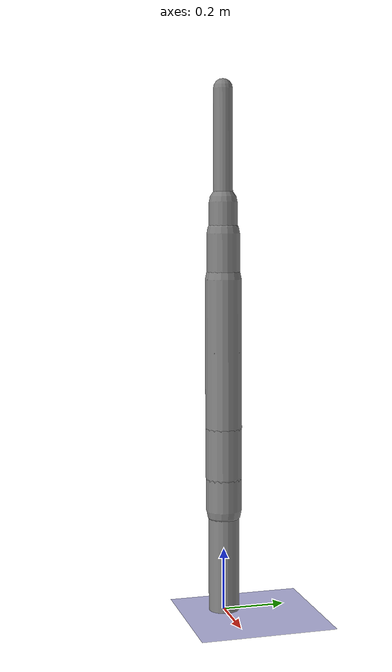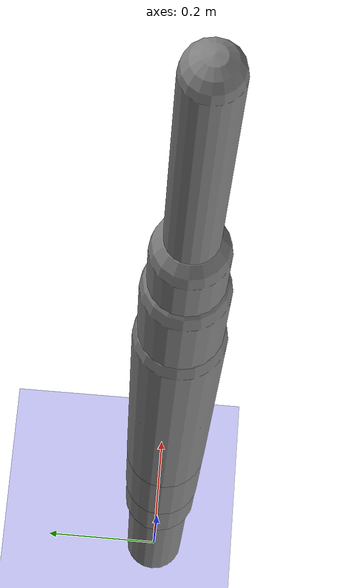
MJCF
<?xml version='1.0' encoding='UTF-8'?>
<mujoco model="robot_model">
  <worldbody>
    <light name="light" pos="0 -3 10" dir="0 0.5 -1" diffuse=".8 .8 .8" specular="0.1 0.1 0.1"/>
    <geom name="floor" type="plane" size="10.0 10.0 0.1" pos="0 0 0" rgba="0.8 0.8 1 1" contype="2" conaffinity="1"/>
    <body name="limb0" pos="0 0 0">
      <geom type="capsule" fromto="0 0 0 0 0 0.45661623856302164" size="0.049801474954876836" density="698.4850526219719" contype="1" conaffinity="2"/>
      <site type="sphere" size="0.01" name="limb0_site0" pos="0 0 0.4362571260375736"/>
      <site type="sphere" size="0.01" name="limb0_site1" pos="0 0 0.328490241625548"/>
      <freejoint name="limb0_root"/>
      <body name="limb1" pos="0 0 0.4362571260375736">
        <geom type="capsule" fromto="0 0 0 0 0 0.40845966504384795" size="0.058092403829812705" density="1189.9842333916856" contype="1" conaffinity="2"/>
        <site type="sphere" size="0.01" name="limb1_site0" pos="0 0 0.3831327430558419"/>
        <site type="sphere" size="0.01" name="limb1_site1" pos="0 0 0.16283997418838086"/>
        <body name="limb2" pos="0 0 0.3831327430558419">
          <geom type="capsule" fromto="0 0 0 0 0 0.5" size="0.045329815490319995" density="1017.2531489540214" contype="1" conaffinity="2"/>
          <site type="sphere" size="0.01" name="limb2_site0" pos="0 0 0.4086911084967624"/>
          <site type="sphere" size="0.01" name="limb2_site1" pos="0 0 0.07813025057707049"/>
          <site type="sphere" size="0.01" name="limb2_site2" pos="0 0 0.12986835276111092"/>
          <body name="limb3" pos="0 0 0.4086911084967624">
            <geom type="capsule" fromto="0 0 0 0 0 0.4421996038731557" size="0.0306984811473651" density="786.5427317260016" contype="1" conaffinity="2"/>
            <joint name="joint_limb2_limb3_0" type="hinge" axis="1 0 0" range="-39.49060384065946 39.49060384065946" damping="5.0"/>
          </body>
          <body name="limb4" pos="0 0 0.07813025057707049">
            <geom type="capsule" fromto="0 0 0 0 0 0.3022856622679478" size="0.048175815576506256" density="901.0737310055127" contype="1" conaffinity="2"/>
            <joint name="joint_limb2_limb4_0" type="hinge" axis="0 1 0" range="-91.32318965408898 91.32318965408898" damping="5.0"/>
          </body>
          <body name="limb5" pos="0 0 0.12986835276111092">
            <geom type="capsule" fromto="0 0 0 0 0 0.2718382711396347" size="0.052967933430587415" density="959.6445780864858" contype="1" conaffinity="2"/>
            <joint name="joint_limb2_limb5_0" type="hinge" axis="0 1 0" range="-53.51127969085405 53.51127969085405" damping="5.0"/>
          </body>
          <joint name="joint_limb1_limb2_0" type="hinge" axis="0 1 0" range="-60.15149157641839 60.15149157641839" damping="5.0"/>
        </body>
        <body name="limb6" pos="0 0 0.16283997418838086">
          <geom type="capsule" fromto="0 0 0 0 0 0.4769937876246635" size="0.05853425073235774" density="823.7473855435437" contype="1" conaffinity="2"/>
          <joint name="joint_limb1_limb6_0" type="hinge" axis="0 0 1" range="-64.41110330721068 64.41110330721068" damping="5.0"/>
        </body>
        <joint name="joint_limb0_limb1_0" type="hinge" axis="0 1 0" range="-102.24898965233746 102.24898965233746" damping="5.0"/>
      </body>
      <body name="limb7" pos="0 0 0.328490241625548">
        <geom type="capsule" fromto="0 0 0 0 0 0.3390209356510857" size="0.056972380129968095" density="679.5462153507075" contype="1" conaffinity="2"/>
        <joint name="joint_limb0_limb7_0" type="hinge" axis="0 1 0" range="-76.9634112741505 76.9634112741505" damping="5.0"/>
      </body>
    </body>
  </worldbody>
  <actuator>
    <position name="position_actuator_joint_limb0_limb1_0" joint="joint_limb0_limb1_0" gear="1.6641496608697004" inheritrange="1" forcerange="-30.652165452900483 30.652165452900483" forcelimited="true" kp="100.0"/>
    <position name="position_actuator_joint_limb1_limb2_0" joint="joint_limb1_limb2_0" gear="2.0" inheritrange="1" forcerange="-18.401183504925072 18.401183504925072" forcelimited="true" kp="100.0"/>
    <position name="position_actuator_joint_limb2_limb3_0" joint="joint_limb2_limb3_0" gear="1.7381429786599083" inheritrange="1" forcerange="-5.625236709842964 5.625236709842964" forcelimited="true" kp="100.0"/>
    <position name="position_actuator_joint_limb2_limb4_0" joint="joint_limb2_limb4_0" gear="1.8896882551835783" inheritrange="1" forcerange="-12.040267435535391 12.040267435535391" forcelimited="true" kp="100.0"/>
    <position name="position_actuator_joint_limb2_limb5_0" joint="joint_limb2_limb5_0" gear="1.5090076720061971" inheritrange="1" forcerange="-14.483348105099225 14.483348105099225" forcelimited="true" kp="100.0"/>
    <position name="position_actuator_joint_limb1_limb6_0" joint="joint_limb1_limb6_0" gear="1.032333284181076" inheritrange="1" forcerange="-24.606956957865886 24.606956957865886" forcelimited="true" kp="100.0"/>
    <position name="position_actuator_joint_limb0_limb7_0" joint="joint_limb0_limb7_0" gear="1.25739722463336" inheritrange="1" forcerange="-14.378019506289444 14.378019506289444" forcelimited="true" kp="100.0"/>
  </actuator>
</mujoco>
